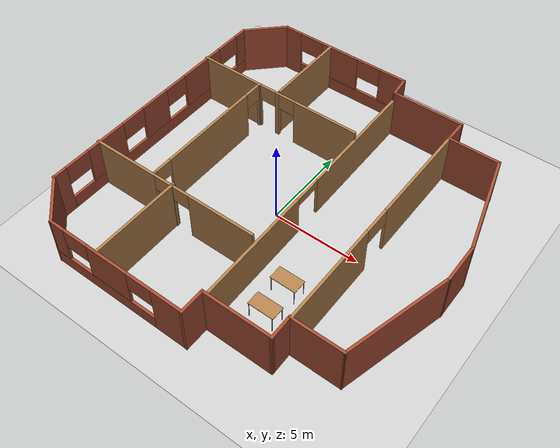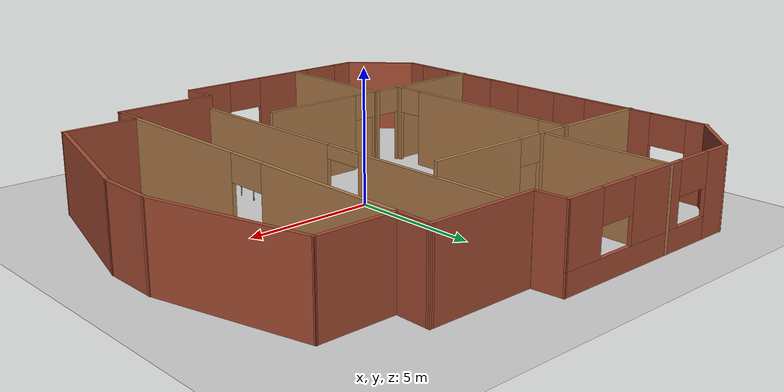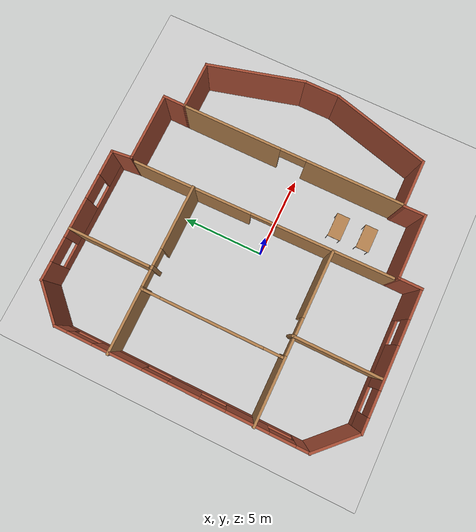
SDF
<sdf version="1.7">
 <world name="default">
  <model name="ground_plane">
   <static>1</static>
   <link name="link">
    <collision name="collision">
     <geometry><plane><normal>0 0 1</normal><size>100 100</size></plane></geometry>
     <surface>
      <contact><collide_bitmask>65535</collide_bitmask></contact>
      <friction><ode><mu>100</mu><mu2>50</mu2></ode></friction>
     </surface>
    </collision>
    <visual name="visual">
     <cast_shadows>0</cast_shadows>
     <geometry><plane><normal>0 0 1</normal><size>100 100</size></plane></geometry>
     <material>
      <script><uri>file://media/materials/scripts/gazebo.material</uri><name>Gazebo/Grey</name></script>
     </material>
    </visual>
   </link>
  </model>
  <model name="Building">
   <pose>0.522472 0.648664 0 0 -0 0</pose>
   <link name="Wall_0">
    <collision name="Wall_0_Collision">
     <geometry><box><size>4 0.15 3</size></box></geometry>
     <pose>0 0 1.5 0 -0 0</pose>
    </collision>
    <visual name="Wall_0_Visual">
     <pose>0 0 1.5 0 -0 0</pose>
     <geometry><box><size>4 0.15 3</size></box></geometry>
     <material>
      <script><uri>file://media/materials/scripts/gazebo.material</uri><name>Gazebo/Bricks</name></script>
      <ambient>1 1 1 1</ambient>
     </material>
     <meta><layer>0</layer></meta>
    </visual>
    <pose>2.95253 -8.01393 0 0 -0 3.14159</pose>
   </link>
   <link name="Wall_10">
    <collision name="Wall_10_Collision">
     <geometry><box><size>4.25 0.15 3</size></box></geometry>
     <pose>0 0 1.5 0 -0 0</pose>
    </collision>
    <visual name="Wall_10_Visual">
     <pose>0 0 1.5 0 -0 0</pose>
     <geometry><box><size>4.25 0.15 3</size></box></geometry>
     <material>
      <script><uri>file://media/materials/scripts/gazebo.material</uri><name>Gazebo/Bricks</name></script>
      <ambient>1 1 1 1</ambient>
     </material>
     <meta><layer>0</layer></meta>
    </visual>
    <pose>2.88353 8.19507 0 0 -0 0</pose>
   </link>
   <link name="Wall_13">
    <collision name="Wall_13_Collision">
     <geometry><box><size>3 0.15 3</size></box></geometry>
     <pose>0 0 1.5 0 -0 0</pose>
    </collision>
    <visual name="Wall_13_Visual">
     <pose>0 0 1.5 0 -0 0</pose>
     <geometry><box><size>3 0.15 3</size></box></geometry>
     <material>
      <script><uri>file://media/materials/scripts/gazebo.material</uri><name>Gazebo/Bricks</name></script>
      <ambient>1 1 1 1</ambient>
     </material>
     <meta><layer>0</layer></meta>
    </visual>
    <pose>6.35253 6.89207 0 0 -0 0</pose>
   </link>
   <link name="Wall_14">
    <collision name="Wall_14_Collision">
     <geometry><box><size>6 0.15 3</size></box></geometry>
     <pose>0 0 1.5 0 -0 0</pose>
    </collision>
    <visual name="Wall_14_Visual">
     <pose>0 0 1.5 0 -0 0</pose>
     <geometry><box><size>6 0.15 3</size></box></geometry>
     <material>
      <script><uri>file://media/materials/scripts/gazebo.material</uri><name>Gazebo/Bricks</name></script>
      <ambient>1 1 1 1</ambient>
     </material>
     <meta><layer>0</layer></meta>
    </visual>
    <pose>8.53453 4.06707 0 0 -0 -1.30898</pose>
   </link>
   <link name="Wall_15">
    <collision name="Wall_15_Collision">
     <geometry><box><size>2.25 0.15 3</size></box></geometry>
     <pose>0 0 1.5 0 -0 0</pose>
    </collision>
    <visual name="Wall_15_Visual">
     <pose>0 0 1.5 0 -0 0</pose>
     <geometry><box><size>2.25 0.15 3</size></box></geometry>
     <material>
      <script><uri>file://media/materials/scripts/gazebo.material</uri><name>Gazebo/Bricks</name></script>
      <ambient>1 1 1 1</ambient>
     </material>
     <meta><layer>0</layer></meta>
    </visual>
    <pose>9.29153 0.192069 0 0 -0 -1.5708</pose>
   </link>
   <link name="Wall_16">
    <collision name="Wall_16_Collision">
     <geometry><box><size>6.25 0.15 3</size></box></geometry>
     <pose>0 0 1.5 0 -0 0</pose>
    </collision>
    <visual name="Wall_16_Visual">
     <pose>0 0 1.5 0 -0 0</pose>
     <geometry><box><size>6.25 0.15 3</size></box></geometry>
     <material>
      <script><uri>file://media/materials/scripts/gazebo.material</uri><name>Gazebo/Bricks</name></script>
      <ambient>1 1 1 1</ambient>
     </material>
     <meta><layer>0</layer></meta>
    </visual>
    <pose>8.50203 -3.80393 0 0 -0 -1.83263</pose>
   </link>
   <link name="Wall_17">
    <collision name="Wall_17_Collision">
     <geometry><box><size>3 0.15 3</size></box></geometry>
     <pose>0 0 1.5 0 -0 0</pose>
    </collision>
    <visual name="Wall_17_Visual">
     <pose>0 0 1.5 0 -0 0</pose>
     <geometry><box><size>3 0.15 3</size></box></geometry>
     <material>
      <script><uri>file://media/materials/scripts/gazebo.material</uri><name>Gazebo/Bricks</name></script>
      <ambient>1 1 1 1</ambient>
     </material>
     <meta><layer>0</layer></meta>
    </visual>
    <pose>6.28753 -6.74993 0 0 -0 3.14159</pose>
   </link>
   <link name="Wall_21">
    <pose>-4.25847 4.28707 0 0 -0 0</pose>
    <visual name="Wall_21_Visual_0">
     <pose>-3.10441 0 1.5 0 -0 0</pose>
     <geometry><box><size>4.04118 0.15 3</size></box></geometry>
     <material>
      <script><uri>file://media/materials/scripts/gazebo.material</uri><name>Gazebo/Wood</name></script>
      <ambient>0.360784 0.207843 0.4 1</ambient>
     </material>
     <meta><layer>0</layer></meta>
    </visual>
    <collision name="Wall_21_Collision_0">
     <geometry><box><size>4.04118 0.15 3</size></box></geometry>
     <pose>-3.10441 0 1.5 0 -0 0</pose>
    </collision>
    <visual name="Wall_21_Visual_1">
     <pose>0.044252 0 1.5 0 -0 0</pose>
     <geometry><box><size>0.256146 0.15 3</size></box></geometry>
     <material>
      <script><uri>file://media/materials/scripts/gazebo.material</uri><name>Gazebo/Wood</name></script>
      <ambient>0.360784 0.207843 0.4 1</ambient>
     </material>
     <meta><layer>0</layer></meta>
    </visual>
    <collision name="Wall_21_Collision_1">
     <geometry><box><size>0.256146 0.15 3</size></box></geometry>
     <pose>0.044252 0 1.5 0 -0 0</pose>
    </collision>
    <visual name="Wall_21_Visual_2">
     <pose>3.14866 0 1.5 0 -0 0</pose>
     <geometry><box><size>3.95268 0.15 3</size></box></geometry>
     <material>
      <script><uri>file://media/materials/scripts/gazebo.material</uri><name>Gazebo/Wood</name></script>
      <ambient>0.360784 0.207843 0.4 1</ambient>
     </material>
     <meta><layer>0</layer></meta>
    </visual>
    <collision name="Wall_21_Collision_2">
     <geometry><box><size>3.95268 0.15 3</size></box></geometry>
     <pose>3.14866 0 1.5 0 -0 0</pose>
    </collision>
    <visual name="Wall_21_Visual_3">
     <pose>-0.583821 0 2.5 0 -0 0</pose>
     <geometry><box><size>1 0.15 1</size></box></geometry>
     <material>
      <script><uri>file://media/materials/scripts/gazebo.material</uri><name>Gazebo/Wood</name></script>
      <ambient>0.360784 0.207843 0.4 1</ambient>
     </material>
     <meta><layer>0</layer></meta>
    </visual>
    <collision name="Wall_21_Collision_3">
     <geometry><box><size>1 0.15 1</size></box></geometry>
     <pose>-0.583821 0 2.5 0 -0 0</pose>
    </collision>
    <visual name="Wall_21_Visual_4">
     <pose>0.672325 0 2.5 0 -0 0</pose>
     <geometry><box><size>1 0.15 1</size></box></geometry>
     <material>
      <script><uri>file://media/materials/scripts/gazebo.material</uri><name>Gazebo/Wood</name></script>
      <ambient>0.360784 0.207843 0.4 1</ambient>
     </material>
     <meta><layer>0</layer></meta>
    </visual>
    <collision name="Wall_21_Collision_4">
     <geometry><box><size>1 0.15 1</size></box></geometry>
     <pose>0.672325 0 2.5 0 -0 0</pose>
    </collision>
   </link>
   <link name="Wall_23">
    <pose>-4.25847 -4.22693 0 0 -0 0</pose>
    <visual name="Wall_23_Visual_0">
     <pose>-3.10441 0 1.5 0 -0 0</pose>
     <geometry><box><size>4.04118 0.15 3</size></box></geometry>
     <material>
      <script><uri>file://media/materials/scripts/gazebo.material</uri><name>Gazebo/Wood</name></script>
      <ambient>0.360784 0.207843 0.4 1</ambient>
     </material>
     <meta><layer>0</layer></meta>
    </visual>
    <collision name="Wall_23_Collision_0">
     <geometry><box><size>4.04118 0.15 3</size></box></geometry>
     <pose>-3.10441 0 1.5 0 -0 0</pose>
    </collision>
    <visual name="Wall_23_Visual_1">
     <pose>0.02099 0 1.5 0 -0 0</pose>
     <geometry><box><size>0.209622 0.15 3</size></box></geometry>
     <material>
      <script><uri>file://media/materials/scripts/gazebo.material</uri><name>Gazebo/Wood</name></script>
      <ambient>0.360784 0.207843 0.4 1</ambient>
     </material>
     <meta><layer>0</layer></meta>
    </visual>
    <collision name="Wall_23_Collision_1">
     <geometry><box><size>0.209622 0.15 3</size></box></geometry>
     <pose>0.02099 0 1.5 0 -0 0</pose>
    </collision>
    <visual name="Wall_23_Visual_2">
     <pose>3.1254 0 1.5 0 -0 0</pose>
     <geometry><box><size>3.9992 0.15 3</size></box></geometry>
     <material>
      <script><uri>file://media/materials/scripts/gazebo.material</uri><name>Gazebo/Wood</name></script>
      <ambient>0.360784 0.207843 0.4 1</ambient>
     </material>
     <meta><layer>0</layer></meta>
    </visual>
    <collision name="Wall_23_Collision_2">
     <geometry><box><size>3.9992 0.15 3</size></box></geometry>
     <pose>3.1254 0 1.5 0 -0 0</pose>
    </collision>
    <visual name="Wall_23_Visual_3">
     <pose>-0.583821 0 2.5 0 -0 0</pose>
     <geometry><box><size>1 0.15 1</size></box></geometry>
     <material>
      <script><uri>file://media/materials/scripts/gazebo.material</uri><name>Gazebo/Wood</name></script>
      <ambient>0.360784 0.207843 0.4 1</ambient>
     </material>
     <meta><layer>0</layer></meta>
    </visual>
    <collision name="Wall_23_Collision_3">
     <geometry><box><size>1 0.15 1</size></box></geometry>
     <pose>-0.583821 0 2.5 0 -0 0</pose>
    </collision>
    <visual name="Wall_23_Visual_4">
     <pose>0.625801 0 2.5 0 -0 0</pose>
     <geometry><box><size>1 0.15 1</size></box></geometry>
     <material>
      <script><uri>file://media/materials/scripts/gazebo.material</uri><name>Gazebo/Wood</name></script>
      <ambient>0.360784 0.207843 0.4 1</ambient>
     </material>
     <meta><layer>0</layer></meta>
    </visual>
    <collision name="Wall_23_Collision_4">
     <geometry><box><size>1 0.15 1</size></box></geometry>
     <pose>0.625801 0 2.5 0 -0 0</pose>
    </collision>
   </link>
   <link name="Wall_27">
    <collision name="Wall_27_Collision">
     <geometry><box><size>5 0.15 3</size></box></geometry>
     <pose>0 0 1.5 0 -0 0</pose>
    </collision>
    <visual name="Wall_27_Visual">
     <pose>0 0 1.5 0 -0 0</pose>
     <geometry><box><size>5 0.15 3</size></box></geometry>
     <material>
      <script><uri>file://media/materials/scripts/gazebo.material</uri><name>Gazebo/Wood</name></script>
      <ambient>0.360784 0.207843 0.4 1</ambient>
     </material>
     <meta><layer>0</layer></meta>
    </visual>
    <pose>-4.23747 6.93307 0 0 -0 -1.5708</pose>
   </link>
   <link name="Wall_29">
    <pose>-5.49347 0.112069 0 0 -0 -1.5708</pose>
    <visual name="Wall_29_Visual_0">
     <pose>-4.13689 0 1.5 0 -0 0</pose>
     <geometry><box><size>0.22622 0.15 3</size></box></geometry>
     <material>
      <script><uri>file://media/materials/scripts/gazebo.material</uri><name>Gazebo/Wood</name></script>
      <ambient>0.360784 0.207843 0.4 1</ambient>
     </material>
     <meta><layer>0</layer></meta>
    </visual>
    <collision name="Wall_29_Collision_0">
     <geometry><box><size>0.22622 0.15 3</size></box></geometry>
     <pose>-4.13689 0 1.5 0 -0 0</pose>
    </collision>
    <visual name="Wall_29_Visual_1">
     <pose>0.0353 0 1.5 0 -0 0</pose>
     <geometry><box><size>6.11816 0.15 3</size></box></geometry>
     <material>
      <script><uri>file://media/materials/scripts/gazebo.material</uri><name>Gazebo/Wood</name></script>
      <ambient>0.360784 0.207843 0.4 1</ambient>
     </material>
     <meta><layer>0</layer></meta>
    </visual>
    <collision name="Wall_29_Collision_1">
     <geometry><box><size>6.11816 0.15 3</size></box></geometry>
     <pose>0.0353 0 1.5 0 -0 0</pose>
    </collision>
    <visual name="Wall_29_Visual_2">
     <pose>4.17219 0 1.5 0 -0 0</pose>
     <geometry><box><size>0.155621 0.15 3</size></box></geometry>
     <material>
      <script><uri>file://media/materials/scripts/gazebo.material</uri><name>Gazebo/Wood</name></script>
      <ambient>0.360784 0.207843 0.4 1</ambient>
     </material>
     <meta><layer>0</layer></meta>
    </visual>
    <collision name="Wall_29_Collision_2">
     <geometry><box><size>0.155621 0.15 3</size></box></geometry>
     <pose>4.17219 0 1.5 0 -0 0</pose>
    </collision>
    <visual name="Wall_29_Visual_3">
     <pose>-3.52378 0 2.5 0 -0 0</pose>
     <geometry><box><size>1 0.15 1</size></box></geometry>
     <material>
      <script><uri>file://media/materials/scripts/gazebo.material</uri><name>Gazebo/Wood</name></script>
      <ambient>0.360784 0.207843 0.4 1</ambient>
     </material>
     <meta><layer>0</layer></meta>
    </visual>
    <collision name="Wall_29_Collision_3">
     <geometry><box><size>1 0.15 1</size></box></geometry>
     <pose>-3.52378 0 2.5 0 -0 0</pose>
    </collision>
    <visual name="Wall_29_Visual_4">
     <pose>3.59438 0 2.5 0 -0 0</pose>
     <geometry><box><size>1 0.15 1</size></box></geometry>
     <material>
      <script><uri>file://media/materials/scripts/gazebo.material</uri><name>Gazebo/Wood</name></script>
      <ambient>0.360784 0.207843 0.4 1</ambient>
     </material>
     <meta><layer>0</layer></meta>
    </visual>
    <collision name="Wall_29_Collision_4">
     <geometry><box><size>1 0.15 1</size></box></geometry>
     <pose>3.59438 0 2.5 0 -0 0</pose>
    </collision>
   </link>
   <link name="Wall_3">
    <pose>-3.16947 -9.35193 0 0 -0 3.14159</pose>
    <visual name="Wall_3_Visual_0">
     <pose>-3.25269 0 1.5 0 -0 0</pose>
     <geometry><box><size>1.74462 0.15 3</size></box></geometry>
     <material>
      <script><uri>file://media/materials/scripts/gazebo.material</uri><name>Gazebo/Bricks</name></script>
      <ambient>1 1 1 1</ambient>
     </material>
     <meta><layer>0</layer></meta>
    </visual>
    <collision name="Wall_3_Collision_0">
     <geometry><box><size>1.74462 0.15 3</size></box></geometry>
     <pose>-3.25269 0 1.5 0 -0 0</pose>
    </collision>
    <visual name="Wall_3_Visual_1">
     <pose>0.872312 0 0.4 0 -0 0</pose>
     <geometry><box><size>6.50538 0.15 0.8</size></box></geometry>
     <material>
      <script><uri>file://media/materials/scripts/gazebo.material</uri><name>Gazebo/Bricks</name></script>
      <ambient>1 1 1 1</ambient>
     </material>
     <meta><layer>0</layer></meta>
    </visual>
    <collision name="Wall_3_Collision_1">
     <geometry><box><size>6.50538 0.15 0.8</size></box></geometry>
     <pose>0.872312 0 0.4 0 -0 0</pose>
    </collision>
    <visual name="Wall_3_Visual_2">
     <pose>0.393413 0 1.9 0 -0 0</pose>
     <geometry><box><size>2.54758 0.15 2.2</size></box></geometry>
     <material>
      <script><uri>file://media/materials/scripts/gazebo.material</uri><name>Gazebo/Bricks</name></script>
      <ambient>1 1 1 1</ambient>
     </material>
     <meta><layer>0</layer></meta>
    </visual>
    <collision name="Wall_3_Collision_2">
     <geometry><box><size>2.54758 0.15 2.2</size></box></geometry>
     <pose>0.393413 0 1.9 0 -0 0</pose>
    </collision>
    <visual name="Wall_3_Visual_3">
     <pose>3.6461 0 1.9 0 -0 0</pose>
     <geometry><box><size>0.957797 0.15 2.2</size></box></geometry>
     <material>
      <script><uri>file://media/materials/scripts/gazebo.material</uri><name>Gazebo/Bricks</name></script>
      <ambient>1 1 1 1</ambient>
     </material>
     <meta><layer>0</layer></meta>
    </visual>
    <collision name="Wall_3_Collision_3">
     <geometry><box><size>0.957797 0.15 2.2</size></box></geometry>
     <pose>3.6461 0 1.9 0 -0 0</pose>
    </collision>
    <visual name="Wall_3_Visual_4">
     <pose>-1.63038 0 2.4 0 -0 0</pose>
     <geometry><box><size>1.5 0.15 1.2</size></box></geometry>
     <material>
      <script><uri>file://media/materials/scripts/gazebo.material</uri><name>Gazebo/Bricks</name></script>
      <ambient>1 1 1 1</ambient>
     </material>
     <meta><layer>0</layer></meta>
    </visual>
    <collision name="Wall_3_Collision_4">
     <geometry><box><size>1.5 0.15 1.2</size></box></geometry>
     <pose>-1.63038 0 2.4 0 -0 0</pose>
    </collision>
    <visual name="Wall_3_Visual_5">
     <pose>2.4172 0 2.4 0 -0 0</pose>
     <geometry><box><size>1.5 0.15 1.2</size></box></geometry>
     <material>
      <script><uri>file://media/materials/scripts/gazebo.material</uri><name>Gazebo/Bricks</name></script>
      <ambient>1 1 1 1</ambient>
     </material>
     <meta><layer>0</layer></meta>
    </visual>
    <collision name="Wall_3_Collision_5">
     <geometry><box><size>1.5 0.15 1.2</size></box></geometry>
     <pose>2.4172 0 2.4 0 -0 0</pose>
    </collision>
   </link>
   <link name="Wall_31">
    <collision name="Wall_31_Collision">
     <geometry><box><size>5.25 0.15 3</size></box></geometry>
     <pose>0 0 1.5 0 -0 0</pose>
    </collision>
    <visual name="Wall_31_Visual">
     <pose>0 0 1.5 0 -0 0</pose>
     <geometry><box><size>5.25 0.15 3</size></box></geometry>
     <material>
      <script><uri>file://media/materials/scripts/gazebo.material</uri><name>Gazebo/Wood</name></script>
      <ambient>0.360784 0.207843 0.4 1</ambient>
     </material>
     <meta><layer>0</layer></meta>
    </visual>
    <pose>-4.23747 -6.68393 0 0 -0 -1.5708</pose>
   </link>
   <link name="Wall_35">
    <collision name="Wall_35_Collision">
     <geometry><box><size>1.5 0.15 3</size></box></geometry>
     <pose>0 0 1.5 0 -0 0</pose>
    </collision>
    <visual name="Wall_35_Visual">
     <pose>0 0 1.5 0 -0 0</pose>
     <geometry><box><size>1.5 0.15 3</size></box></geometry>
     <material>
      <script><uri>file://media/materials/scripts/gazebo.material</uri><name>Gazebo/Bricks</name></script>
      <ambient>1 1 1 1</ambient>
     </material>
     <meta><layer>0</layer></meta>
    </visual>
    <pose>1.02753 -8.68893 0 0 -0 -1.5708</pose>
   </link>
   <link name="Wall_40">
    <collision name="Wall_40_Collision">
     <geometry><box><size>1.31428 0.15 3</size></box></geometry>
     <pose>0 0 1.5 0 -0 0</pose>
    </collision>
    <visual name="Wall_40_Visual">
     <pose>0 0 1.5 0 -0 0</pose>
     <geometry><box><size>1.31428 0.15 3</size></box></geometry>
     <material>
      <script><uri>file://media/materials/scripts/gazebo.material</uri><name>Gazebo/Bricks</name></script>
      <ambient>1 1 1 1</ambient>
     </material>
     <meta><layer>0</layer></meta>
    </visual>
    <pose>0.768529 8.77357 0 0 -0 -1.45891</pose>
   </link>
   <link name="Wall_42">
    <pose>0.930529 0.090569 0 0 -0 -1.55883</pose>
    <visual name="Wall_42_Visual_0">
     <pose>-4.42557 0 1.25 0 -0 0</pose>
     <geometry><box><size>7.50902 0.15 2.5</size></box></geometry>
     <material>
      <script><uri>file://media/materials/scripts/gazebo.material</uri><name>Gazebo/Wood</name></script>
      <ambient>0.360784 0.207843 0.4 1</ambient>
     </material>
     <meta><layer>0</layer></meta>
    </visual>
    <collision name="Wall_42_Collision_0">
     <geometry><box><size>7.50902 0.15 2.5</size></box></geometry>
     <pose>-4.42557 0 1.25 0 -0 0</pose>
    </collision>
    <visual name="Wall_42_Visual_1">
     <pose>4.55451 0 1.25 0 -0 0</pose>
     <geometry><box><size>7.25114 0.15 2.5</size></box></geometry>
     <material>
      <script><uri>file://media/materials/scripts/gazebo.material</uri><name>Gazebo/Wood</name></script>
      <ambient>0.360784 0.207843 0.4 1</ambient>
     </material>
     <meta><layer>0</layer></meta>
    </visual>
    <collision name="Wall_42_Collision_1">
     <geometry><box><size>7.25114 0.15 2.5</size></box></geometry>
     <pose>4.55451 0 1.25 0 -0 0</pose>
    </collision>
    <visual name="Wall_42_Visual_2">
     <pose>0.12894 0 2.25 0 -0 0</pose>
     <geometry><box><size>1.6 0.15 0.5</size></box></geometry>
     <material>
      <script><uri>file://media/materials/scripts/gazebo.material</uri><name>Gazebo/Wood</name></script>
      <ambient>0.360784 0.207843 0.4 1</ambient>
     </material>
     <meta><layer>0</layer></meta>
    </visual>
    <collision name="Wall_42_Collision_2">
     <geometry><box><size>1.6 0.15 0.5</size></box></geometry>
     <pose>0.12894 0 2.25 0 -0 0</pose>
    </collision>
   </link>
   <link name="Wall_44">
    <collision name="Wall_44_Collision">
     <geometry><box><size>1.41409 0.15 3</size></box></geometry>
     <pose>0 0 1.5 0 -0 0</pose>
    </collision>
    <visual name="Wall_44_Visual">
     <pose>0 0 1.5 0 -0 0</pose>
     <geometry><box><size>1.41409 0.15 3</size></box></geometry>
     <material>
      <script><uri>file://media/materials/scripts/gazebo.material</uri><name>Gazebo/Bricks</name></script>
      <ambient>1 1 1 1</ambient>
     </material>
     <meta><layer>0</layer></meta>
    </visual>
    <pose>4.87003 -7.38193 0 0 -0 -1.55893</pose>
   </link>
   <link name="Wall_46">
    <collision name="Wall_46_Collision">
     <geometry><box><size>1.45301 0.15 3</size></box></geometry>
     <pose>0 0 1.5 0 -0 0</pose>
    </collision>
    <visual name="Wall_46_Visual">
     <pose>0 0 1.5 0 -0 0</pose>
     <geometry><box><size>1.45301 0.15 3</size></box></geometry>
     <material>
      <script><uri>file://media/materials/scripts/gazebo.material</uri><name>Gazebo/Bricks</name></script>
      <ambient>1 1 1 1</ambient>
     </material>
     <meta><layer>0</layer></meta>
    </visual>
    <pose>4.93053 7.54357 0 0 -0 -1.5754</pose>
   </link>
   <link name="Wall_48">
    <pose>4.92753 0.092069 0 0 -0 -1.5708</pose>
    <visual name="Wall_48_Visual_0">
     <pose>-3.79496 0 1.5 0 -0 0</pose>
     <geometry><box><size>6.16008 0.15 3</size></box></geometry>
     <material>
      <script><uri>file://media/materials/scripts/gazebo.material</uri><name>Gazebo/Wood</name></script>
      <ambient>0.360784 0.207843 0.4 1</ambient>
     </material>
     <meta><layer>0</layer></meta>
    </visual>
    <collision name="Wall_48_Collision_0">
     <geometry><box><size>6.16008 0.15 3</size></box></geometry>
     <pose>-3.79496 0 1.5 0 -0 0</pose>
    </collision>
    <visual name="Wall_48_Visual_1">
     <pose>3.88004 0 1.5 0 -0 0</pose>
     <geometry><box><size>5.98991 0.15 3</size></box></geometry>
     <material>
      <script><uri>file://media/materials/scripts/gazebo.material</uri><name>Gazebo/Wood</name></script>
      <ambient>0.360784 0.207843 0.4 1</ambient>
     </material>
     <meta><layer>0</layer></meta>
    </visual>
    <collision name="Wall_48_Collision_1">
     <geometry><box><size>5.98991 0.15 3</size></box></geometry>
     <pose>3.88004 0 1.5 0 -0 0</pose>
    </collision>
    <visual name="Wall_48_Visual_2">
     <pose>0.085085 0 2.5 0 -0 0</pose>
     <geometry><box><size>1.6 0.15 1</size></box></geometry>
     <material>
      <script><uri>file://media/materials/scripts/gazebo.material</uri><name>Gazebo/Wood</name></script>
      <ambient>0.360784 0.207843 0.4 1</ambient>
     </material>
     <meta><layer>0</layer></meta>
    </visual>
    <collision name="Wall_48_Collision_2">
     <geometry><box><size>1.6 0.15 1</size></box></geometry>
     <pose>0.085085 0 2.5 0 -0 0</pose>
    </collision>
   </link>
   <link name="Wall_5">
    <collision name="Wall_5_Collision">
     <geometry><box><size>3 0.15 3</size></box></geometry>
     <pose>0 0 1.5 0 -0 0</pose>
    </collision>
    <visual name="Wall_5_Visual">
     <pose>0 0 1.5 0 -0 0</pose>
     <geometry><box><size>3 0.15 3</size></box></geometry>
     <material>
      <script><uri>file://media/materials/scripts/gazebo.material</uri><name>Gazebo/Bricks</name></script>
      <ambient>1 1 1 1</ambient>
     </material>
     <meta><layer>0</layer></meta>
    </visual>
    <pose>-8.22747 -8.34443 0 0 -0 2.35644</pose>
   </link>
   <link name="Wall_6">
    <pose>-9.23547 0.088069 0 0 -0 1.5708</pose>
    <visual name="Wall_6_Visual_0">
     <pose>-7.07329 0 1.5 0 -0 0</pose>
     <geometry><box><size>0.853425 0.15 3</size></box></geometry>
     <material>
      <script><uri>file://media/materials/scripts/gazebo.material</uri><name>Gazebo/Bricks</name></script>
      <ambient>1 1 1 1</ambient>
     </material>
     <meta><layer>0</layer></meta>
    </visual>
    <collision name="Wall_6_Collision_0">
     <geometry><box><size>0.853425 0.15 3</size></box></geometry>
     <pose>-7.07329 0 1.5 0 -0 0</pose>
    </collision>
    <visual name="Wall_6_Visual_1">
     <pose>0.426713 0 0.4 0 -0 0</pose>
     <geometry><box><size>14.1466 0.15 0.8</size></box></geometry>
     <material>
      <script><uri>file://media/materials/scripts/gazebo.material</uri><name>Gazebo/Bricks</name></script>
      <ambient>1 1 1 1</ambient>
     </material>
     <meta><layer>0</layer></meta>
    </visual>
    <collision name="Wall_6_Collision_1">
     <geometry><box><size>14.1466 0.15 0.8</size></box></geometry>
     <pose>0.426713 0 0.4 0 -0 0</pose>
    </collision>
    <visual name="Wall_6_Visual_2">
     <pose>-3.89605 0 1.9 0 -0 0</pose>
     <geometry><box><size>2.50106 0.15 2.2</size></box></geometry>
     <material>
      <script><uri>file://media/materials/scripts/gazebo.material</uri><name>Gazebo/Bricks</name></script>
      <ambient>1 1 1 1</ambient>
     </material>
     <meta><layer>0</layer></meta>
    </visual>
    <collision name="Wall_6_Collision_2">
     <geometry><box><size>2.50106 0.15 2.2</size></box></geometry>
     <pose>-3.89605 0 1.9 0 -0 0</pose>
    </collision>
    <visual name="Wall_6_Visual_3">
     <pose>-0.220657 0 1.9 0 -0 0</pose>
     <geometry><box><size>1.84972 0.15 2.2</size></box></geometry>
     <material>
      <script><uri>file://media/materials/scripts/gazebo.material</uri><name>Gazebo/Bricks</name></script>
      <ambient>1 1 1 1</ambient>
     </material>
     <meta><layer>0</layer></meta>
    </visual>
    <collision name="Wall_6_Collision_3">
     <geometry><box><size>1.84972 0.15 2.2</size></box></geometry>
     <pose>-0.220657 0 1.9 0 -0 0</pose>
    </collision>
    <visual name="Wall_6_Visual_4">
     <pose>3.68735 0 1.9 0 -0 0</pose>
     <geometry><box><size>2.9663 0.15 2.2</size></box></geometry>
     <material>
      <script><uri>file://media/materials/scripts/gazebo.material</uri><name>Gazebo/Bricks</name></script>
      <ambient>1 1 1 1</ambient>
     </material>
     <meta><layer>0</layer></meta>
    </visual>
    <collision name="Wall_6_Collision_4">
     <geometry><box><size>2.9663 0.15 2.2</size></box></geometry>
     <pose>3.68735 0 1.9 0 -0 0</pose>
    </collision>
    <visual name="Wall_6_Visual_5">
     <pose>7.08525 0 1.9 0 -0 0</pose>
     <geometry><box><size>0.8295 0.15 2.2</size></box></geometry>
     <material>
      <script><uri>file://media/materials/scripts/gazebo.material</uri><name>Gazebo/Bricks</name></script>
      <ambient>1 1 1 1</ambient>
     </material>
     <meta><layer>0</layer></meta>
    </visual>
    <collision name="Wall_6_Collision_5">
     <geometry><box><size>0.8295 0.15 2.2</size></box></geometry>
     <pose>7.08525 0 1.9 0 -0 0</pose>
    </collision>
    <visual name="Wall_6_Visual_6">
     <pose>-5.89658 0 2.4 0 -0 0</pose>
     <geometry><box><size>1.5 0.15 1.2</size></box></geometry>
     <material>
      <script><uri>file://media/materials/scripts/gazebo.material</uri><name>Gazebo/Bricks</name></script>
      <ambient>1 1 1 1</ambient>
     </material>
     <meta><layer>0</layer></meta>
    </visual>
    <collision name="Wall_6_Collision_6">
     <geometry><box><size>1.5 0.15 1.2</size></box></geometry>
     <pose>-5.89658 0 2.4 0 -0 0</pose>
    </collision>
    <visual name="Wall_6_Visual_7">
     <pose>-1.89552 0 2.4 0 -0 0</pose>
     <geometry><box><size>1.5 0.15 1.2</size></box></geometry>
     <material>
      <script><uri>file://media/materials/scripts/gazebo.material</uri><name>Gazebo/Bricks</name></script>
      <ambient>1 1 1 1</ambient>
     </material>
     <meta><layer>0</layer></meta>
    </visual>
    <collision name="Wall_6_Collision_7">
     <geometry><box><size>1.5 0.15 1.2</size></box></geometry>
     <pose>-1.89552 0 2.4 0 -0 0</pose>
    </collision>
    <visual name="Wall_6_Visual_8">
     <pose>1.4542 0 2.4 0 -0 0</pose>
     <geometry><box><size>1.5 0.15 1.2</size></box></geometry>
     <material>
      <script><uri>file://media/materials/scripts/gazebo.material</uri><name>Gazebo/Bricks</name></script>
      <ambient>1 1 1 1</ambient>
     </material>
     <meta><layer>0</layer></meta>
    </visual>
    <collision name="Wall_6_Collision_8">
     <geometry><box><size>1.5 0.15 1.2</size></box></geometry>
     <pose>1.4542 0 2.4 0 -0 0</pose>
    </collision>
    <visual name="Wall_6_Visual_9">
     <pose>5.9205 0 2.4 0 -0 0</pose>
     <geometry><box><size>1.5 0.15 1.2</size></box></geometry>
     <material>
      <script><uri>file://media/materials/scripts/gazebo.material</uri><name>Gazebo/Bricks</name></script>
      <ambient>1 1 1 1</ambient>
     </material>
     <meta><layer>0</layer></meta>
    </visual>
    <collision name="Wall_6_Collision_9">
     <geometry><box><size>1.5 0.15 1.2</size></box></geometry>
     <pose>5.9205 0 2.4 0 -0 0</pose>
    </collision>
   </link>
   <link name="Wall_7">
    <collision name="Wall_7_Collision">
     <geometry><box><size>2.75 0.15 3</size></box></geometry>
     <pose>0 0 1.5 0 -0 0</pose>
    </collision>
    <visual name="Wall_7_Visual">
     <pose>0 0 1.5 0 -0 0</pose>
     <geometry><box><size>2.75 0.15 3</size></box></geometry>
     <material>
      <script><uri>file://media/materials/scripts/gazebo.material</uri><name>Gazebo/Bricks</name></script>
      <ambient>1 1 1 1</ambient>
     </material>
     <meta><layer>0</layer></meta>
    </visual>
    <pose>-8.31597 8.43257 0 0 -0 0.785398</pose>
   </link>
   <link name="Wall_8">
    <pose>-3.34647 9.35207 0 0 -0 0</pose>
    <visual name="Wall_8_Visual_0">
     <pose>-3.53434 0 1.5 0 -0 0</pose>
     <geometry><box><size>1.18132 0.15 3</size></box></geometry>
     <material>
      <script><uri>file://media/materials/scripts/gazebo.material</uri><name>Gazebo/Bricks</name></script>
      <ambient>1 1 1 1</ambient>
     </material>
     <meta><layer>0</layer></meta>
    </visual>
    <collision name="Wall_8_Collision_0">
     <geometry><box><size>1.18132 0.15 3</size></box></geometry>
     <pose>-3.53434 0 1.5 0 -0 0</pose>
    </collision>
    <visual name="Wall_8_Visual_1">
     <pose>0.59066 0 0.4 0 -0 0</pose>
     <geometry><box><size>7.06868 0.15 0.8</size></box></geometry>
     <material>
      <script><uri>file://media/materials/scripts/gazebo.material</uri><name>Gazebo/Bricks</name></script>
      <ambient>1 1 1 1</ambient>
     </material>
     <meta><layer>0</layer></meta>
    </visual>
    <collision name="Wall_8_Collision_1">
     <geometry><box><size>7.06868 0.15 0.8</size></box></geometry>
     <pose>0.59066 0 0.4 0 -0 0</pose>
    </collision>
    <visual name="Wall_8_Visual_2">
     <pose>-0.216413 0 1.9 0 -0 0</pose>
     <geometry><box><size>2.45453 0.15 2.2</size></box></geometry>
     <material>
      <script><uri>file://media/materials/scripts/gazebo.material</uri><name>Gazebo/Bricks</name></script>
      <ambient>1 1 1 1</ambient>
     </material>
     <meta><layer>0</layer></meta>
    </visual>
    <collision name="Wall_8_Collision_2">
     <geometry><box><size>2.45453 0.15 2.2</size></box></geometry>
     <pose>-0.216413 0 1.9 0 -0 0</pose>
    </collision>
    <visual name="Wall_8_Visual_3">
     <pose>3.31793 0 1.9 0 -0 0</pose>
     <geometry><box><size>1.61415 0.15 2.2</size></box></geometry>
     <material>
      <script><uri>file://media/materials/scripts/gazebo.material</uri><name>Gazebo/Bricks</name></script>
      <ambient>1 1 1 1</ambient>
     </material>
     <meta><layer>0</layer></meta>
    </visual>
    <collision name="Wall_8_Collision_3">
     <geometry><box><size>1.61415 0.15 2.2</size></box></geometry>
     <pose>3.31793 0 1.9 0 -0 0</pose>
    </collision>
    <visual name="Wall_8_Visual_4">
     <pose>-2.19368 0 2.4 0 -0 0</pose>
     <geometry><box><size>1.5 0.15 1.2</size></box></geometry>
     <material>
      <script><uri>file://media/materials/scripts/gazebo.material</uri><name>Gazebo/Bricks</name></script>
      <ambient>1 1 1 1</ambient>
     </material>
     <meta><layer>0</layer></meta>
    </visual>
    <collision name="Wall_8_Collision_4">
     <geometry><box><size>1.5 0.15 1.2</size></box></geometry>
     <pose>-2.19368 0 2.4 0 -0 0</pose>
    </collision>
    <visual name="Wall_8_Visual_5">
     <pose>1.76085 0 2.4 0 -0 0</pose>
     <geometry><box><size>1.5 0.15 1.2</size></box></geometry>
     <material>
      <script><uri>file://media/materials/scripts/gazebo.material</uri><name>Gazebo/Bricks</name></script>
      <ambient>1 1 1 1</ambient>
     </material>
     <meta><layer>0</layer></meta>
    </visual>
    <collision name="Wall_8_Collision_5">
     <geometry><box><size>1.5 0.15 1.2</size></box></geometry>
     <pose>1.76085 0 2.4 0 -0 0</pose>
    </collision>
   </link>
   <static>1</static>
  </model>
  <model name="table">
   <static>1</static>
   <link name="link">
    <collision name="surface">
     <pose>0 0 1 0 -0 0</pose>
     <geometry><box><size>1.5 0.8 0.03</size></box></geometry>
     <surface><friction><ode><mu>0.6</mu><mu2>0.6</mu2></ode></friction></surface>
    </collision>
    <visual name="visual1">
     <pose>0 0 1 0 -0 0</pose>
     <geometry><box><size>1.5 0.8 0.03</size></box></geometry>
     <material>
      <script><uri>file://media/materials/scripts/gazebo.material</uri><name>Gazebo/Wood</name></script>
     </material>
    </visual>
    <collision name="front_left_leg">
     <pose>0.68 0.38 0.5 0 -0 0</pose>
     <geometry><cylinder><radius>0.02</radius><length>1</length></cylinder></geometry>
    </collision>
    <visual name="front_left_leg">
     <pose>0.68 0.38 0.5 0 -0 0</pose>
     <geometry><cylinder><radius>0.02</radius><length>1</length></cylinder></geometry>
     <material>
      <script><uri>file://media/materials/scripts/gazebo.material</uri><name>Gazebo/Grey</name></script>
     </material>
    </visual>
    <collision name="front_right_leg">
     <pose>0.68 -0.38 0.5 0 -0 0</pose>
     <geometry><cylinder><radius>0.02</radius><length>1</length></cylinder></geometry>
    </collision>
    <visual name="front_right_leg">
     <pose>0.68 -0.38 0.5 0 -0 0</pose>
     <geometry><cylinder><radius>0.02</radius><length>1</length></cylinder></geometry>
     <material>
      <script><uri>file://media/materials/scripts/gazebo.material</uri><name>Gazebo/Grey</name></script>
     </material>
    </visual>
    <collision name="back_right_leg">
     <pose>-0.68 -0.38 0.5 0 -0 0</pose>
     <geometry><cylinder><radius>0.02</radius><length>1</length></cylinder></geometry>
    </collision>
    <visual name="back_right_leg">
     <pose>-0.68 -0.38 0.5 0 -0 0</pose>
     <geometry><cylinder><radius>0.02</radius><length>1</length></cylinder></geometry>
     <material>
      <script><uri>file://media/materials/scripts/gazebo.material</uri><name>Gazebo/Grey</name></script>
     </material>
    </visual>
    <collision name="back_left_leg">
     <pose>-0.68 0.38 0.5 0 -0 0</pose>
     <geometry><cylinder><radius>0.02</radius><length>1</length></cylinder></geometry>
    </collision>
    <visual name="back_left_leg">
     <pose>-0.68 0.38 0.5 0 -0 0</pose>
     <geometry><cylinder><radius>0.02</radius><length>1</length></cylinder></geometry>
     <material>
      <script><uri>file://media/materials/scripts/gazebo.material</uri><name>Gazebo/Grey</name></script>
     </material>
    </visual>
   </link>
   <pose>3.38595 -5.25858 0 0 -0 0</pose>
  </model>
  <model name="table_clone">
   <static>1</static>
   <link name="link">
    <collision name="surface">
     <pose>0 0 1 0 -0 0</pose>
     <geometry><box><size>1.5 0.8 0.03</size></box></geometry>
     <surface><friction><ode><mu>0.6</mu><mu2>0.6</mu2></ode></friction></surface>
    </collision>
    <visual name="visual1">
     <pose>0 0 1 0 -0 0</pose>
     <geometry><box><size>1.5 0.8 0.03</size></box></geometry>
     <material>
      <script><uri>file://media/materials/scripts/gazebo.material</uri><name>Gazebo/Wood</name></script>
     </material>
    </visual>
    <collision name="front_left_leg">
     <pose>0.68 0.38 0.5 0 -0 0</pose>
     <geometry><cylinder><radius>0.02</radius><length>1</length></cylinder></geometry>
    </collision>
    <visual name="front_left_leg">
     <pose>0.68 0.38 0.5 0 -0 0</pose>
     <geometry><cylinder><radius>0.02</radius><length>1</length></cylinder></geometry>
     <material>
      <script><uri>file://media/materials/scripts/gazebo.material</uri><name>Gazebo/Grey</name></script>
     </material>
    </visual>
    <collision name="front_right_leg">
     <pose>0.68 -0.38 0.5 0 -0 0</pose>
     <geometry><cylinder><radius>0.02</radius><length>1</length></cylinder></geometry>
    </collision>
    <visual name="front_right_leg">
     <pose>0.68 -0.38 0.5 0 -0 0</pose>
     <geometry><cylinder><radius>0.02</radius><length>1</length></cylinder></geometry>
     <material>
      <script><uri>file://media/materials/scripts/gazebo.material</uri><name>Gazebo/Grey</name></script>
     </material>
    </visual>
    <collision name="back_right_leg">
     <pose>-0.68 -0.38 0.5 0 -0 0</pose>
     <geometry><cylinder><radius>0.02</radius><length>1</length></cylinder></geometry>
    </collision>
    <visual name="back_right_leg">
     <pose>-0.68 -0.38 0.5 0 -0 0</pose>
     <geometry><cylinder><radius>0.02</radius><length>1</length></cylinder></geometry>
     <material>
      <script><uri>file://media/materials/scripts/gazebo.material</uri><name>Gazebo/Grey</name></script>
     </material>
    </visual>
    <collision name="back_left_leg">
     <pose>-0.68 0.38 0.5 0 -0 0</pose>
     <geometry><cylinder><radius>0.02</radius><length>1</length></cylinder></geometry>
    </collision>
    <visual name="back_left_leg">
     <pose>-0.68 0.38 0.5 0 -0 0</pose>
     <geometry><cylinder><radius>0.02</radius><length>1</length></cylinder></geometry>
     <material>
      <script><uri>file://media/materials/scripts/gazebo.material</uri><name>Gazebo/Grey</name></script>
     </material>
    </visual>
   </link>
   <pose>3.3125 -3.4808 0 0 -0 0</pose>
  </model>
 </world>
</sdf>
